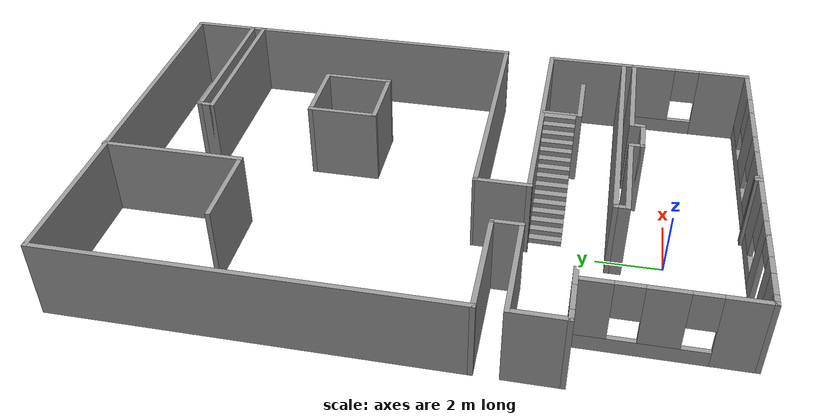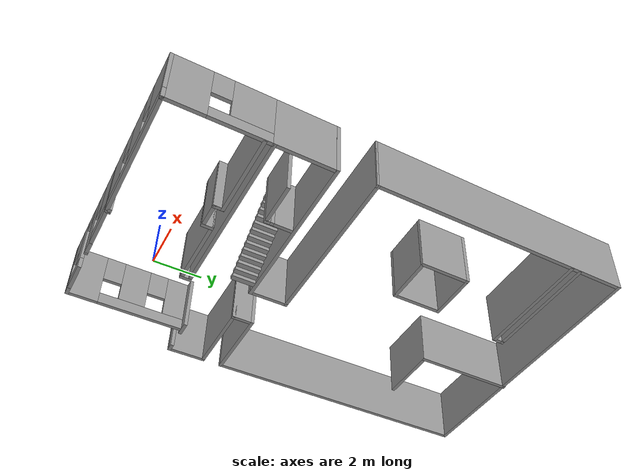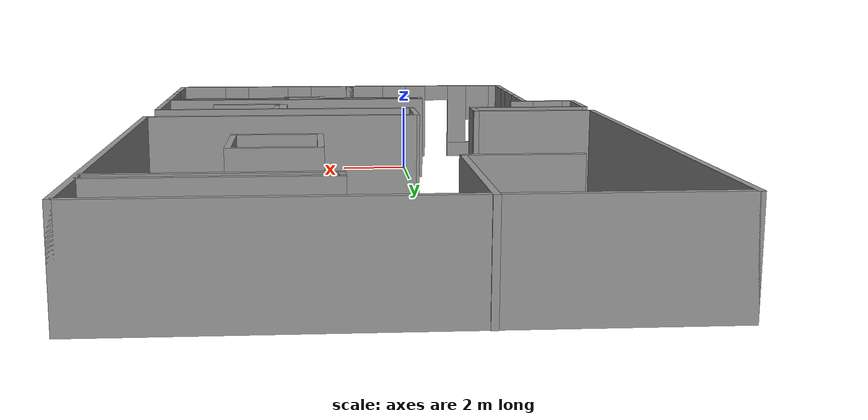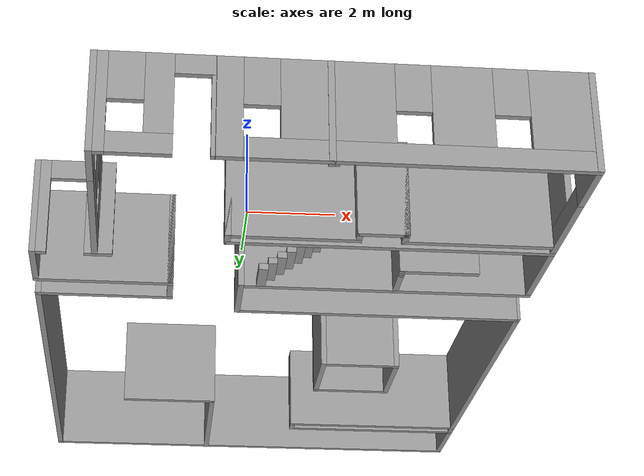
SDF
<?xml version='1.0'?>
<sdf version='1.7'>
  <model name='maze'>
    <pose>1.29327 7.35167 0 0 -0 0</pose>
    <link name='Stairs_0'>
      <visual name='Stairs_0_Visual_0'>
        <pose>-0.673494 -3.77939 0.083333 0 -0 1.5708</pose>
        <geometry>
          <box>
            <size>1 0.233333 0.166667</size>
          </box>
        </geometry>
        <material>
          <script>
            <uri>file://media/materials/scripts/gazebo.material</uri>
            <name>Gazebo/Grey</name>
          </script>
          <ambient>1 1 1 1</ambient>
        </material>
        <meta>
          <layer>0</layer>
        </meta>
      </visual>
      <collision name='Stairs_0_Collision_0'>
        <geometry>
          <box>
            <size>1 0.233333 0.166667</size>
          </box>
        </geometry>
        <pose>-0.673494 -3.77939 0.083333 0 -0 1.5708</pose>
      </collision>
      <visual name='Stairs_0_Visual_1'>
        <pose>-0.44016 -3.77939 0.25 0 -0 1.5708</pose>
        <geometry>
          <box>
            <size>1 0.233333 0.166667</size>
          </box>
        </geometry>
        <material>
          <script>
            <uri>file://media/materials/scripts/gazebo.material</uri>
            <name>Gazebo/Grey</name>
          </script>
          <ambient>1 1 1 1</ambient>
        </material>
        <meta>
          <layer>0</layer>
        </meta>
      </visual>
      <collision name='Stairs_0_Collision_1'>
        <geometry>
          <box>
            <size>1 0.233333 0.166667</size>
          </box>
        </geometry>
        <pose>-0.44016 -3.77939 0.25 0 -0 1.5708</pose>
      </collision>
      <visual name='Stairs_0_Visual_2'>
        <pose>-0.206827 -3.77939 0.416667 0 -0 1.5708</pose>
        <geometry>
          <box>
            <size>1 0.233333 0.166667</size>
          </box>
        </geometry>
        <material>
          <script>
            <uri>file://media/materials/scripts/gazebo.material</uri>
            <name>Gazebo/Grey</name>
          </script>
          <ambient>1 1 1 1</ambient>
        </material>
        <meta>
          <layer>0</layer>
        </meta>
      </visual>
      <collision name='Stairs_0_Collision_2'>
        <geometry>
          <box>
            <size>1 0.233333 0.166667</size>
          </box>
        </geometry>
        <pose>-0.206827 -3.77939 0.416667 0 -0 1.5708</pose>
      </collision>
      <visual name='Stairs_0_Visual_3'>
        <pose>0.026506 -3.77939 0.583333 0 -0 1.5708</pose>
        <geometry>
          <box>
            <size>1 0.233333 0.166667</size>
          </box>
        </geometry>
        <material>
          <script>
            <uri>file://media/materials/scripts/gazebo.material</uri>
            <name>Gazebo/Grey</name>
          </script>
          <ambient>1 1 1 1</ambient>
        </material>
        <meta>
          <layer>0</layer>
        </meta>
      </visual>
      <collision name='Stairs_0_Collision_3'>
        <geometry>
          <box>
            <size>1 0.233333 0.166667</size>
          </box>
        </geometry>
        <pose>0.026506 -3.77939 0.583333 0 -0 1.5708</pose>
      </collision>
      <visual name='Stairs_0_Visual_4'>
        <pose>0.25984 -3.77939 0.75 0 -0 1.5708</pose>
        <geometry>
          <box>
            <size>1 0.233333 0.166667</size>
          </box>
        </geometry>
        <material>
          <script>
            <uri>file://media/materials/scripts/gazebo.material</uri>
            <name>Gazebo/Grey</name>
          </script>
          <ambient>1 1 1 1</ambient>
        </material>
        <meta>
          <layer>0</layer>
        </meta>
      </visual>
      <collision name='Stairs_0_Collision_4'>
        <geometry>
          <box>
            <size>1 0.233333 0.166667</size>
          </box>
        </geometry>
        <pose>0.25984 -3.77939 0.75 0 -0 1.5708</pose>
      </collision>
      <visual name='Stairs_0_Visual_5'>
        <pose>0.493173 -3.77939 0.916667 0 -0 1.5708</pose>
        <geometry>
          <box>
            <size>1 0.233333 0.166667</size>
          </box>
        </geometry>
        <material>
          <script>
            <uri>file://media/materials/scripts/gazebo.material</uri>
            <name>Gazebo/Grey</name>
          </script>
          <ambient>1 1 1 1</ambient>
        </material>
        <meta>
          <layer>0</layer>
        </meta>
      </visual>
      <collision name='Stairs_0_Collision_5'>
        <geometry>
          <box>
            <size>1 0.233333 0.166667</size>
          </box>
        </geometry>
        <pose>0.493173 -3.77939 0.916667 0 -0 1.5708</pose>
      </collision>
      <visual name='Stairs_0_Visual_6'>
        <pose>0.726506 -3.77939 1.08333 0 -0 1.5708</pose>
        <geometry>
          <box>
            <size>1 0.233333 0.166667</size>
          </box>
        </geometry>
        <material>
          <script>
            <uri>file://media/materials/scripts/gazebo.material</uri>
            <name>Gazebo/Grey</name>
          </script>
          <ambient>1 1 1 1</ambient>
        </material>
        <meta>
          <layer>0</layer>
        </meta>
      </visual>
      <collision name='Stairs_0_Collision_6'>
        <geometry>
          <box>
            <size>1 0.233333 0.166667</size>
          </box>
        </geometry>
        <pose>0.726506 -3.77939 1.08333 0 -0 1.5708</pose>
      </collision>
      <visual name='Stairs_0_Visual_7'>
        <pose>0.95984 -3.77939 1.25 0 -0 1.5708</pose>
        <geometry>
          <box>
            <size>1 0.233333 0.166667</size>
          </box>
        </geometry>
        <material>
          <script>
            <uri>file://media/materials/scripts/gazebo.material</uri>
            <name>Gazebo/Grey</name>
          </script>
          <ambient>1 1 1 1</ambient>
        </material>
        <meta>
          <layer>0</layer>
        </meta>
      </visual>
      <collision name='Stairs_0_Collision_7'>
        <geometry>
          <box>
            <size>1 0.233333 0.166667</size>
          </box>
        </geometry>
        <pose>0.95984 -3.77939 1.25 0 -0 1.5708</pose>
      </collision>
      <visual name='Stairs_0_Visual_8'>
        <pose>1.19317 -3.77939 1.41667 0 -0 1.5708</pose>
        <geometry>
          <box>
            <size>1 0.233333 0.166667</size>
          </box>
        </geometry>
        <material>
          <script>
            <uri>file://media/materials/scripts/gazebo.material</uri>
            <name>Gazebo/Grey</name>
          </script>
          <ambient>1 1 1 1</ambient>
        </material>
        <meta>
          <layer>0</layer>
        </meta>
      </visual>
      <collision name='Stairs_0_Collision_8'>
        <geometry>
          <box>
            <size>1 0.233333 0.166667</size>
          </box>
        </geometry>
        <pose>1.19317 -3.77939 1.41667 0 -0 1.5708</pose>
      </collision>
      <visual name='Stairs_0_Visual_9'>
        <pose>1.42651 -3.77939 1.58333 0 -0 1.5708</pose>
        <geometry>
          <box>
            <size>1 0.233333 0.166667</size>
          </box>
        </geometry>
        <material>
          <script>
            <uri>file://media/materials/scripts/gazebo.material</uri>
            <name>Gazebo/Grey</name>
          </script>
          <ambient>1 1 1 1</ambient>
        </material>
        <meta>
          <layer>0</layer>
        </meta>
      </visual>
      <collision name='Stairs_0_Collision_9'>
        <geometry>
          <box>
            <size>1 0.233333 0.166667</size>
          </box>
        </geometry>
        <pose>1.42651 -3.77939 1.58333 0 -0 1.5708</pose>
      </collision>
      <visual name='Stairs_0_Visual_10'>
        <pose>1.65984 -3.77939 1.75 0 -0 1.5708</pose>
        <geometry>
          <box>
            <size>1 0.233333 0.166667</size>
          </box>
        </geometry>
        <material>
          <script>
            <uri>file://media/materials/scripts/gazebo.material</uri>
            <name>Gazebo/Grey</name>
          </script>
          <ambient>1 1 1 1</ambient>
        </material>
        <meta>
          <layer>0</layer>
        </meta>
      </visual>
      <collision name='Stairs_0_Collision_10'>
        <geometry>
          <box>
            <size>1 0.233333 0.166667</size>
          </box>
        </geometry>
        <pose>1.65984 -3.77939 1.75 0 -0 1.5708</pose>
      </collision>
      <visual name='Stairs_0_Visual_11'>
        <pose>1.89317 -3.77939 1.91667 0 -0 1.5708</pose>
        <geometry>
          <box>
            <size>1 0.233333 0.166667</size>
          </box>
        </geometry>
        <material>
          <script>
            <uri>file://media/materials/scripts/gazebo.material</uri>
            <name>Gazebo/Grey</name>
          </script>
          <ambient>1 1 1 1</ambient>
        </material>
        <meta>
          <layer>0</layer>
        </meta>
      </visual>
      <collision name='Stairs_0_Collision_11'>
        <geometry>
          <box>
            <size>1 0.233333 0.166667</size>
          </box>
        </geometry>
        <pose>1.89317 -3.77939 1.91667 0 -0 1.5708</pose>
      </collision>
      <visual name='Stairs_0_Visual_12'>
        <pose>2.12651 -3.77939 2.08333 0 -0 1.5708</pose>
        <geometry>
          <box>
            <size>1 0.233333 0.166667</size>
          </box>
        </geometry>
        <material>
          <script>
            <uri>file://media/materials/scripts/gazebo.material</uri>
            <name>Gazebo/Grey</name>
          </script>
          <ambient>1 1 1 1</ambient>
        </material>
        <meta>
          <layer>0</layer>
        </meta>
      </visual>
      <collision name='Stairs_0_Collision_12'>
        <geometry>
          <box>
            <size>1 0.233333 0.166667</size>
          </box>
        </geometry>
        <pose>2.12651 -3.77939 2.08333 0 -0 1.5708</pose>
      </collision>
      <visual name='Stairs_0_Visual_13'>
        <pose>2.35984 -3.77939 2.25 0 -0 1.5708</pose>
        <geometry>
          <box>
            <size>1 0.233333 0.166667</size>
          </box>
        </geometry>
        <material>
          <script>
            <uri>file://media/materials/scripts/gazebo.material</uri>
            <name>Gazebo/Grey</name>
          </script>
          <ambient>1 1 1 1</ambient>
        </material>
        <meta>
          <layer>0</layer>
        </meta>
      </visual>
      <collision name='Stairs_0_Collision_13'>
        <geometry>
          <box>
            <size>1 0.233333 0.166667</size>
          </box>
        </geometry>
        <pose>2.35984 -3.77939 2.25 0 -0 1.5708</pose>
      </collision>
      <visual name='Stairs_0_Visual_14'>
        <pose>2.59317 -3.77939 2.41667 0 -0 1.5708</pose>
        <geometry>
          <box>
            <size>1 0.233333 0.166667</size>
          </box>
        </geometry>
        <material>
          <script>
            <uri>file://media/materials/scripts/gazebo.material</uri>
            <name>Gazebo/Grey</name>
          </script>
          <ambient>1 1 1 1</ambient>
        </material>
        <meta>
          <layer>0</layer>
        </meta>
      </visual>
      <collision name='Stairs_0_Collision_14'>
        <geometry>
          <box>
            <size>1 0.233333 0.166667</size>
          </box>
        </geometry>
        <pose>2.59317 -3.77939 2.41667 0 -0 1.5708</pose>
      </collision>
    </link>
    <link name='Wall_16'>
      <pose>-4.8001 -7.34451 0 0 -0 1.5708</pose>
      <visual name='Wall_16_Visual_0'>
        <pose>-1.84788 0 1.25 0 -0 0</pose>
        <geometry>
          <box>
            <size>1.33923 0.15 2.5</size>
          </box>
        </geometry>
        <material>
          <script>
            <uri>file://media/materials/scripts/gazebo.material</uri>
            <name>Gazebo/Grey</name>
          </script>
          <ambient>1 1 1 1</ambient>
        </material>
        <meta>
          <layer>0</layer>
        </meta>
      </visual>
      <collision name='Wall_16_Collision_0'>
        <geometry>
          <box>
            <size>1.33923 0.15 2.5</size>
          </box>
        </geometry>
        <pose>-1.84788 0 1.25 0 -0 0</pose>
      </collision>
      <visual name='Wall_16_Visual_1'>
        <pose>0.669613 0 0.25 0 -0 0</pose>
        <geometry>
          <box>
            <size>3.69575 0.15 0.5</size>
          </box>
        </geometry>
        <material>
          <script>
            <uri>file://media/materials/scripts/gazebo.material</uri>
            <name>Gazebo/Grey</name>
          </script>
          <ambient>1 1 1 1</ambient>
        </material>
        <meta>
          <layer>0</layer>
        </meta>
      </visual>
      <collision name='Wall_16_Collision_1'>
        <geometry>
          <box>
            <size>3.69575 0.15 0.5</size>
          </box>
        </geometry>
        <pose>0.669613 0 0.25 0 -0 0</pose>
      </collision>
      <visual name='Wall_16_Visual_2'>
        <pose>0.19458 0 1.5 0 -0 0</pose>
        <geometry>
          <box>
            <size>1.14569 0.15 2</size>
          </box>
        </geometry>
        <material>
          <script>
            <uri>file://media/materials/scripts/gazebo.material</uri>
            <name>Gazebo/Grey</name>
          </script>
          <ambient>1 1 1 1</ambient>
        </material>
        <meta>
          <layer>0</layer>
        </meta>
      </visual>
      <collision name='Wall_16_Collision_2'>
        <geometry>
          <box>
            <size>1.14569 0.15 2</size>
          </box>
        </geometry>
        <pose>0.19458 0 1.5 0 -0 0</pose>
      </collision>
      <visual name='Wall_16_Visual_3'>
        <pose>2.04246 0 1.5 0 -0 0</pose>
        <geometry>
          <box>
            <size>0.950066 0.15 2</size>
          </box>
        </geometry>
        <material>
          <script>
            <uri>file://media/materials/scripts/gazebo.material</uri>
            <name>Gazebo/Grey</name>
          </script>
          <ambient>1 1 1 1</ambient>
        </material>
        <meta>
          <layer>0</layer>
        </meta>
      </visual>
      <collision name='Wall_16_Collision_3'>
        <geometry>
          <box>
            <size>0.950066 0.15 2</size>
          </box>
        </geometry>
        <pose>2.04246 0 1.5 0 -0 0</pose>
      </collision>
      <visual name='Wall_16_Visual_4'>
        <pose>-0.778264 0 1.9 0 -0 0</pose>
        <geometry>
          <box>
            <size>0.8 0.15 1.2</size>
          </box>
        </geometry>
        <material>
          <script>
            <uri>file://media/materials/scripts/gazebo.material</uri>
            <name>Gazebo/Grey</name>
          </script>
          <ambient>1 1 1 1</ambient>
        </material>
        <meta>
          <layer>0</layer>
        </meta>
      </visual>
      <collision name='Wall_16_Collision_4'>
        <geometry>
          <box>
            <size>0.8 0.15 1.2</size>
          </box>
        </geometry>
        <pose>-0.778264 0 1.9 0 -0 0</pose>
      </collision>
      <visual name='Wall_16_Visual_5'>
        <pose>1.16742 0 1.9 0 -0 0</pose>
        <geometry>
          <box>
            <size>0.8 0.15 1.2</size>
          </box>
        </geometry>
        <material>
          <script>
            <uri>file://media/materials/scripts/gazebo.material</uri>
            <name>Gazebo/Grey</name>
          </script>
          <ambient>1 1 1 1</ambient>
        </material>
        <meta>
          <layer>0</layer>
        </meta>
      </visual>
      <collision name='Wall_16_Collision_5'>
        <geometry>
          <box>
            <size>0.8 0.15 1.2</size>
          </box>
        </geometry>
        <pose>1.16742 0 1.9 0 -0 0</pose>
      </collision>
    </link>
    <link name='Wall_164'>
      <collision name='Wall_164_Collision'>
        <geometry>
          <box>
            <size>5.25 0.15 2.5</size>
          </box>
        </geometry>
        <pose>0 0 1.25 0 -0 0</pose>
      </collision>
      <visual name='Wall_164_Visual'>
        <pose>0 0 1.25 0 -0 0</pose>
        <geometry>
          <box>
            <size>5.25 0.15 2.5</size>
          </box>
        </geometry>
        <material>
          <script>
            <uri>file://media/materials/scripts/gazebo.material</uri>
            <name>Gazebo/Grey</name>
          </script>
          <ambient>1 1 1 1</ambient>
        </material>
        <meta>
          <layer>0</layer>
        </meta>
      </visual>
      <pose>3.70367 7.75025 0 0 -0 3.14159</pose>
    </link>
    <link name='Wall_165'>
      <collision name='Wall_165_Collision'>
        <geometry>
          <box>
            <size>0.554437 0.15 2.5</size>
          </box>
        </geometry>
        <pose>0 0 1.25 0 -0 0</pose>
      </collision>
      <visual name='Wall_165_Visual'>
        <pose>0 0 1.25 0 -0 0</pose>
        <geometry>
          <box>
            <size>0.554437 0.15 2.5</size>
          </box>
        </geometry>
        <material>
          <script>
            <uri>file://media/materials/scripts/gazebo.material</uri>
            <name>Gazebo/Grey</name>
          </script>
          <ambient>1 1 1 1</ambient>
        </material>
        <meta>
          <layer>0</layer>
        </meta>
      </visual>
      <pose>1.15367 7.54803 0 0 -0 -1.5708</pose>
    </link>
    <link name='Wall_166'>
      <collision name='Wall_166_Collision'>
        <geometry>
          <box>
            <size>5.25 0.15 2.5</size>
          </box>
        </geometry>
        <pose>0 0 1.25 0 -0 0</pose>
      </collision>
      <visual name='Wall_166_Visual'>
        <pose>0 0 1.25 0 -0 0</pose>
        <geometry>
          <box>
            <size>5.25 0.15 2.5</size>
          </box>
        </geometry>
        <material>
          <script>
            <uri>file://media/materials/scripts/gazebo.material</uri>
            <name>Gazebo/Grey</name>
          </script>
          <ambient>1 1 1 1</ambient>
        </material>
        <meta>
          <layer>0</layer>
        </meta>
      </visual>
      <pose>3.70367 7.34581 0 0 -0 0</pose>
    </link>
    <link name='Wall_168'>
      <collision name='Wall_168_Collision'>
        <geometry>
          <box>
            <size>4.5 0.15 2.5</size>
          </box>
        </geometry>
        <pose>0 0 1.25 0 -0 0</pose>
      </collision>
      <visual name='Wall_168_Visual'>
        <pose>0 0 1.25 0 -0 0</pose>
        <geometry>
          <box>
            <size>4.5 0.15 2.5</size>
          </box>
        </geometry>
        <material>
          <script>
            <uri>file://media/materials/scripts/gazebo.material</uri>
            <name>Gazebo/Grey</name>
          </script>
          <ambient>1 1 1 1</ambient>
        </material>
        <meta>
          <layer>0</layer>
        </meta>
      </visual>
      <pose>-1.5102 7.612 0 0 -0 1.5708</pose>
    </link>
    <link name='Wall_170'>
      <collision name='Wall_170_Collision'>
        <geometry>
          <box>
            <size>2.75 0.15 2.5</size>
          </box>
        </geometry>
        <pose>0 0 1.25 0 -0 0</pose>
      </collision>
      <visual name='Wall_170_Visual'>
        <pose>0 0 1.25 0 -0 0</pose>
        <geometry>
          <box>
            <size>2.75 0.15 2.5</size>
          </box>
        </geometry>
        <material>
          <script>
            <uri>file://media/materials/scripts/gazebo.material</uri>
            <name>Gazebo/Grey</name>
          </script>
          <ambient>1 1 1 1</ambient>
        </material>
        <meta>
          <layer>0</layer>
        </meta>
      </visual>
      <pose>-2.8102 5.437 0 0 -0 3.14159</pose>
    </link>
    <link name='Wall_172'>
      <collision name='Wall_172_Collision'>
        <geometry>
          <box>
            <size>2.25 0.15 2.5</size>
          </box>
        </geometry>
        <pose>0 0 1.25 0 -0 0</pose>
      </collision>
      <visual name='Wall_172_Visual'>
        <pose>0 0 1.25 0 -0 0</pose>
        <geometry>
          <box>
            <size>2.25 0.15 2.5</size>
          </box>
        </geometry>
        <material>
          <script>
            <uri>file://media/materials/scripts/gazebo.material</uri>
            <name>Gazebo/Grey</name>
          </script>
          <ambient>1 1 1 1</ambient>
        </material>
        <meta>
          <layer>0</layer>
        </meta>
      </visual>
      <pose>1.54077 3.09965 0 0 -0 -1.5708</pose>
    </link>
    <link name='Wall_173'>
      <collision name='Wall_173_Collision'>
        <geometry>
          <box>
            <size>2.25 0.15 2.5</size>
          </box>
        </geometry>
        <pose>0 0 1.25 0 -0 0</pose>
      </collision>
      <visual name='Wall_173_Visual'>
        <pose>0 0 1.25 0 -0 0</pose>
        <geometry>
          <box>
            <size>2.25 0.15 2.5</size>
          </box>
        </geometry>
        <material>
          <script>
            <uri>file://media/materials/scripts/gazebo.material</uri>
            <name>Gazebo/Grey</name>
          </script>
          <ambient>1 1 1 1</ambient>
        </material>
        <meta>
          <layer>0</layer>
        </meta>
      </visual>
      <pose>2.59077 2.04966 0 0 -0 0</pose>
    </link>
    <link name='Wall_174'>
      <collision name='Wall_174_Collision'>
        <geometry>
          <box>
            <size>2.25 0.15 2.5</size>
          </box>
        </geometry>
        <pose>0 0 1.25 0 -0 0</pose>
      </collision>
      <visual name='Wall_174_Visual'>
        <pose>0 0 1.25 0 -0 0</pose>
        <geometry>
          <box>
            <size>2.25 0.15 2.5</size>
          </box>
        </geometry>
        <material>
          <script>
            <uri>file://media/materials/scripts/gazebo.material</uri>
            <name>Gazebo/Grey</name>
          </script>
          <ambient>1 1 1 1</ambient>
        </material>
        <meta>
          <layer>0</layer>
        </meta>
      </visual>
      <pose>3.64077 3.09965 0 0 -0 1.5708</pose>
    </link>
    <link name='Wall_176'>
      <collision name='Wall_176_Collision'>
        <geometry>
          <box>
            <size>2.25 0.15 2.5</size>
          </box>
        </geometry>
        <pose>0 0 1.25 0 -0 0</pose>
      </collision>
      <visual name='Wall_176_Visual'>
        <pose>0 0 1.25 0 -0 0</pose>
        <geometry>
          <box>
            <size>2.25 0.15 2.5</size>
          </box>
        </geometry>
        <material>
          <script>
            <uri>file://media/materials/scripts/gazebo.material</uri>
            <name>Gazebo/Grey</name>
          </script>
          <ambient>1 1 1 1</ambient>
        </material>
        <meta>
          <layer>0</layer>
        </meta>
      </visual>
      <pose>2.59077 4.14966 0 0 -0 0</pose>
    </link>
    <link name='Wall_31'>
      <collision name='Wall_31_Collision'>
        <geometry>
          <box>
            <size>1.7316 0.15 2.5</size>
          </box>
        </geometry>
        <pose>0 0 1.25 0 -0 0</pose>
      </collision>
      <visual name='Wall_31_Visual'>
        <pose>0 0 1.25 0 -0 0</pose>
        <geometry>
          <box>
            <size>1.7316 0.15 2.5</size>
          </box>
        </geometry>
        <material>
          <script>
            <uri>file://media/materials/scripts/gazebo.material</uri>
            <name>Gazebo/Grey</name>
          </script>
          <ambient>1 1 1 1</ambient>
        </material>
        <meta>
          <layer>0</layer>
        </meta>
      </visual>
      <pose>-6.3001 -3.9928 0 0 -0 1.5708</pose>
    </link>
    <link name='Wall_32'>
      <collision name='Wall_32_Collision'>
        <geometry>
          <box>
            <size>3.5 0.15 2.5</size>
          </box>
        </geometry>
        <pose>0 0 1.25 0 -0 0</pose>
      </collision>
      <visual name='Wall_32_Visual'>
        <pose>0 0 1.25 0 -0 0</pose>
        <geometry>
          <box>
            <size>3.5 0.15 2.5</size>
          </box>
        </geometry>
        <material>
          <script>
            <uri>file://media/materials/scripts/gazebo.material</uri>
            <name>Gazebo/Grey</name>
          </script>
          <ambient>1 1 1 1</ambient>
        </material>
        <meta>
          <layer>0</layer>
        </meta>
      </visual>
      <pose>-4.6251 -3.20202 0 0 -0 0</pose>
    </link>
    <link name='Wall_34'>
      <pose>-3.5001 -9.787 0 0 -0 0</pose>
      <visual name='Wall_34_Visual_0'>
        <pose>-1.17501 0 1.25 0 -0 0</pose>
        <geometry>
          <box>
            <size>0.399976 0.15 2.5</size>
          </box>
        </geometry>
        <material>
          <script>
            <uri>file://media/materials/scripts/gazebo.material</uri>
            <name>Gazebo/Grey</name>
          </script>
          <ambient>1 1 1 1</ambient>
        </material>
        <meta>
          <layer>0</layer>
        </meta>
      </visual>
      <collision name='Wall_34_Collision_0'>
        <geometry>
          <box>
            <size>0.399976 0.15 2.5</size>
          </box>
        </geometry>
        <pose>-1.17501 0 1.25 0 -0 0</pose>
      </collision>
      <visual name='Wall_34_Visual_1'>
        <pose>1.37003 0 1.25 0 -0 0</pose>
        <geometry>
          <box>
            <size>0.009944 0.15 2.5</size>
          </box>
        </geometry>
        <material>
          <script>
            <uri>file://media/materials/scripts/gazebo.material</uri>
            <name>Gazebo/Grey</name>
          </script>
          <ambient>1 1 1 1</ambient>
        </material>
        <meta>
          <layer>0</layer>
        </meta>
      </visual>
      <collision name='Wall_34_Collision_1'>
        <geometry>
          <box>
            <size>0.009944 0.15 2.5</size>
          </box>
        </geometry>
        <pose>1.37003 0 1.25 0 -0 0</pose>
      </collision>
      <visual name='Wall_34_Visual_2'>
        <pose>-0.254984 0 0.25 0 -0 0</pose>
        <geometry>
          <box>
            <size>1.44008 0.15 0.5</size>
          </box>
        </geometry>
        <material>
          <script>
            <uri>file://media/materials/scripts/gazebo.material</uri>
            <name>Gazebo/Grey</name>
          </script>
          <ambient>1 1 1 1</ambient>
        </material>
        <meta>
          <layer>0</layer>
        </meta>
      </visual>
      <collision name='Wall_34_Collision_2'>
        <geometry>
          <box>
            <size>1.44008 0.15 0.5</size>
          </box>
        </geometry>
        <pose>-0.254984 0 0.25 0 -0 0</pose>
      </collision>
      <visual name='Wall_34_Visual_3'>
        <pose>0.145016 0 1.5 0 -0 0</pose>
        <geometry>
          <box>
            <size>0.64008 0.15 2</size>
          </box>
        </geometry>
        <material>
          <script>
            <uri>file://media/materials/scripts/gazebo.material</uri>
            <name>Gazebo/Grey</name>
          </script>
          <ambient>1 1 1 1</ambient>
        </material>
        <meta>
          <layer>0</layer>
        </meta>
      </visual>
      <collision name='Wall_34_Collision_3'>
        <geometry>
          <box>
            <size>0.64008 0.15 2</size>
          </box>
        </geometry>
        <pose>0.145016 0 1.5 0 -0 0</pose>
      </collision>
      <visual name='Wall_34_Visual_4'>
        <pose>-0.575024 0 1.9 0 -0 0</pose>
        <geometry>
          <box>
            <size>0.8 0.15 1.2</size>
          </box>
        </geometry>
        <material>
          <script>
            <uri>file://media/materials/scripts/gazebo.material</uri>
            <name>Gazebo/Grey</name>
          </script>
          <ambient>1 1 1 1</ambient>
        </material>
        <meta>
          <layer>0</layer>
        </meta>
      </visual>
      <collision name='Wall_34_Collision_4'>
        <geometry>
          <box>
            <size>0.8 0.15 1.2</size>
          </box>
        </geometry>
        <pose>-0.575024 0 1.9 0 -0 0</pose>
      </collision>
      <visual name='Wall_34_Visual_5'>
        <pose>0.915056 0 2.25 0 -0 0</pose>
        <geometry>
          <box>
            <size>0.9 0.15 0.5</size>
          </box>
        </geometry>
        <material>
          <script>
            <uri>file://media/materials/scripts/gazebo.material</uri>
            <name>Gazebo/Grey</name>
          </script>
          <ambient>1 1 1 1</ambient>
        </material>
        <meta>
          <layer>0</layer>
        </meta>
      </visual>
      <collision name='Wall_34_Collision_5'>
        <geometry>
          <box>
            <size>0.9 0.15 0.5</size>
          </box>
        </geometry>
        <pose>0.915056 0 2.25 0 -0 0</pose>
      </collision>
    </link>
    <link name='Wall_51'>
      <collision name='Wall_51_Collision'>
        <geometry>
          <box>
            <size>0.25 0.15 2.5</size>
          </box>
        </geometry>
        <pose>0 0 1.25 0 -0 0</pose>
      </collision>
      <visual name='Wall_51_Visual'>
        <pose>0 0 1.25 0 -0 0</pose>
        <geometry>
          <box>
            <size>0.25 0.15 2.5</size>
          </box>
        </geometry>
        <material>
          <script>
            <uri>file://media/materials/scripts/gazebo.material</uri>
            <name>Gazebo/Grey</name>
          </script>
          <ambient>1 1 1 1</ambient>
        </material>
        <meta>
          <layer>0</layer>
        </meta>
      </visual>
      <pose>0.370546 -9.73691 0 0 -0 1.5708</pose>
    </link>
    <link name='Wall_52'>
      <collision name='Wall_52_Collision'>
        <geometry>
          <box>
            <size>0.25 0.15 2.5</size>
          </box>
        </geometry>
        <pose>0 0 1.25 0 -0 0</pose>
      </collision>
      <visual name='Wall_52_Visual'>
        <pose>0 0 1.25 0 -0 0</pose>
        <geometry>
          <box>
            <size>0.25 0.15 2.5</size>
          </box>
        </geometry>
        <material>
          <script>
            <uri>file://media/materials/scripts/gazebo.material</uri>
            <name>Gazebo/Grey</name>
          </script>
          <ambient>1 1 1 1</ambient>
        </material>
        <meta>
          <layer>0</layer>
        </meta>
      </visual>
      <pose>0.420546 -9.68691 0 0 -0 0</pose>
    </link>
    <link name='Wall_54'>
      <pose>6.19248 -7.73607 0 0 -0 1.5708</pose>
      <visual name='Wall_54_Visual_0'>
        <pose>-1.29834 0 1.25 0 -0 0</pose>
        <geometry>
          <box>
            <size>1.65332 0.15 2.5</size>
          </box>
        </geometry>
        <material>
          <script>
            <uri>file://media/materials/scripts/gazebo.material</uri>
            <name>Gazebo/Grey</name>
          </script>
          <ambient>1 1 1 1</ambient>
        </material>
        <meta>
          <layer>0</layer>
        </meta>
      </visual>
      <collision name='Wall_54_Collision_0'>
        <geometry>
          <box>
            <size>1.65332 0.15 2.5</size>
          </box>
        </geometry>
        <pose>-1.29834 0 1.25 0 -0 0</pose>
      </collision>
      <visual name='Wall_54_Visual_1'>
        <pose>0.82666 0 0.25 0 -0 0</pose>
        <geometry>
          <box>
            <size>2.59668 0.15 0.5</size>
          </box>
        </geometry>
        <material>
          <script>
            <uri>file://media/materials/scripts/gazebo.material</uri>
            <name>Gazebo/Grey</name>
          </script>
          <ambient>1 1 1 1</ambient>
        </material>
        <meta>
          <layer>0</layer>
        </meta>
      </visual>
      <collision name='Wall_54_Collision_1'>
        <geometry>
          <box>
            <size>2.59668 0.15 0.5</size>
          </box>
        </geometry>
        <pose>0.82666 0 0.25 0 -0 0</pose>
      </collision>
      <visual name='Wall_54_Visual_2'>
        <pose>1.22666 0 1.5 0 -0 0</pose>
        <geometry>
          <box>
            <size>1.79668 0.15 2</size>
          </box>
        </geometry>
        <material>
          <script>
            <uri>file://media/materials/scripts/gazebo.material</uri>
            <name>Gazebo/Grey</name>
          </script>
          <ambient>1 1 1 1</ambient>
        </material>
        <meta>
          <layer>0</layer>
        </meta>
      </visual>
      <collision name='Wall_54_Collision_2'>
        <geometry>
          <box>
            <size>1.79668 0.15 2</size>
          </box>
        </geometry>
        <pose>1.22666 0 1.5 0 -0 0</pose>
      </collision>
      <visual name='Wall_54_Visual_3'>
        <pose>-0.07168 0 1.9 0 -0 0</pose>
        <geometry>
          <box>
            <size>0.8 0.15 1.2</size>
          </box>
        </geometry>
        <material>
          <script>
            <uri>file://media/materials/scripts/gazebo.material</uri>
            <name>Gazebo/Grey</name>
          </script>
          <ambient>1 1 1 1</ambient>
        </material>
        <meta>
          <layer>0</layer>
        </meta>
      </visual>
      <collision name='Wall_54_Collision_3'>
        <geometry>
          <box>
            <size>0.8 0.15 1.2</size>
          </box>
        </geometry>
        <pose>-0.07168 0 1.9 0 -0 0</pose>
      </collision>
    </link>
    <link name='Wall_55'>
      <collision name='Wall_55_Collision'>
        <geometry>
          <box>
            <size>8 0.15 2.5</size>
          </box>
        </geometry>
        <pose>0 0 1.25 0 -0 0</pose>
      </collision>
      <visual name='Wall_55_Visual'>
        <pose>0 0 1.25 0 -0 0</pose>
        <geometry>
          <box>
            <size>8 0.15 2.5</size>
          </box>
        </geometry>
        <material>
          <script>
            <uri>file://media/materials/scripts/gazebo.material</uri>
            <name>Gazebo/Grey</name>
          </script>
          <ambient>1 1 1 1</ambient>
        </material>
        <meta>
          <layer>0</layer>
        </meta>
      </visual>
      <pose>2.26748 -5.68607 0 0 -0 3.14159</pose>
    </link>
    <link name='Wall_56'>
      <collision name='Wall_56_Collision'>
        <geometry>
          <box>
            <size>0.5 0.15 2.5</size>
          </box>
        </geometry>
        <pose>0 0 1.25 0 -0 0</pose>
      </collision>
      <visual name='Wall_56_Visual'>
        <pose>0 0 1.25 0 -0 0</pose>
        <geometry>
          <box>
            <size>0.5 0.15 2.5</size>
          </box>
        </geometry>
        <material>
          <script>
            <uri>file://media/materials/scripts/gazebo.material</uri>
            <name>Gazebo/Grey</name>
          </script>
          <ambient>1 1 1 1</ambient>
        </material>
        <meta>
          <layer>0</layer>
        </meta>
      </visual>
      <pose>-1.65752 -5.86107 0 0 -0 -1.5708</pose>
    </link>
    <link name='Wall_57'>
      <collision name='Wall_57_Collision'>
        <geometry>
          <box>
            <size>3.25 0.15 2.5</size>
          </box>
        </geometry>
        <pose>0 0 1.25 0 -0 0</pose>
      </collision>
      <visual name='Wall_57_Visual'>
        <pose>0 0 1.25 0 -0 0</pose>
        <geometry>
          <box>
            <size>3.25 0.15 2.5</size>
          </box>
        </geometry>
        <material>
          <script>
            <uri>file://media/materials/scripts/gazebo.material</uri>
            <name>Gazebo/Grey</name>
          </script>
          <ambient>1 1 1 1</ambient>
        </material>
        <meta>
          <layer>0</layer>
        </meta>
      </visual>
      <pose>-0.107519 -6.03607 0 0 -0 0</pose>
    </link>
    <link name='Wall_58'>
      <collision name='Wall_58_Collision'>
        <geometry>
          <box>
            <size>0.5 0.15 2.5</size>
          </box>
        </geometry>
        <pose>0 0 1.25 0 -0 0</pose>
      </collision>
      <visual name='Wall_58_Visual'>
        <pose>0 0 1.25 0 -0 0</pose>
        <geometry>
          <box>
            <size>0.5 0.15 2.5</size>
          </box>
        </geometry>
        <material>
          <script>
            <uri>file://media/materials/scripts/gazebo.material</uri>
            <name>Gazebo/Grey</name>
          </script>
          <ambient>1 1 1 1</ambient>
        </material>
        <meta>
          <layer>0</layer>
        </meta>
      </visual>
      <pose>1.44248 -6.21107 0 0 -0 -1.5708</pose>
    </link>
    <link name='Wall_59'>
      <collision name='Wall_59_Collision'>
        <geometry>
          <box>
            <size>1.25 0.15 2.5</size>
          </box>
        </geometry>
        <pose>0 0 1.25 0 -0 0</pose>
      </collision>
      <visual name='Wall_59_Visual'>
        <pose>0 0 1.25 0 -0 0</pose>
        <geometry>
          <box>
            <size>1.25 0.15 2.5</size>
          </box>
        </geometry>
        <material>
          <script>
            <uri>file://media/materials/scripts/gazebo.material</uri>
            <name>Gazebo/Grey</name>
          </script>
          <ambient>1 1 1 1</ambient>
        </material>
        <meta>
          <layer>0</layer>
        </meta>
      </visual>
      <pose>1.99248 -6.38607 0 0 -0 0</pose>
    </link>
    <link name='Wall_60'>
      <collision name='Wall_60_Collision'>
        <geometry>
          <box>
            <size>0.5 0.15 2.5</size>
          </box>
        </geometry>
        <pose>0 0 1.25 0 -0 0</pose>
      </collision>
      <visual name='Wall_60_Visual'>
        <pose>0 0 1.25 0 -0 0</pose>
        <geometry>
          <box>
            <size>0.5 0.15 2.5</size>
          </box>
        </geometry>
        <material>
          <script>
            <uri>file://media/materials/scripts/gazebo.material</uri>
            <name>Gazebo/Grey</name>
          </script>
          <ambient>1 1 1 1</ambient>
        </material>
        <meta>
          <layer>0</layer>
        </meta>
      </visual>
      <pose>2.54248 -6.21107 0 0 -0 1.5708</pose>
    </link>
    <link name='Wall_61'>
      <collision name='Wall_61_Collision'>
        <geometry>
          <box>
            <size>3.75 0.15 2.5</size>
          </box>
        </geometry>
        <pose>0 0 1.25 0 -0 0</pose>
      </collision>
      <visual name='Wall_61_Visual'>
        <pose>0 0 1.25 0 -0 0</pose>
        <geometry>
          <box>
            <size>3.75 0.15 2.5</size>
          </box>
        </geometry>
        <material>
          <script>
            <uri>file://media/materials/scripts/gazebo.material</uri>
            <name>Gazebo/Grey</name>
          </script>
          <ambient>1 1 1 1</ambient>
        </material>
        <meta>
          <layer>0</layer>
        </meta>
      </visual>
      <pose>4.34248 -6.03607 0 0 -0 0</pose>
    </link>
    <link name='Wall_65'>
      <collision name='Wall_65_Collision'>
        <geometry>
          <box>
            <size>7.51403 0.15 2.5</size>
          </box>
        </geometry>
        <pose>0 0 1.25 0 -0 0</pose>
      </collision>
      <visual name='Wall_65_Visual'>
        <pose>0 0 1.25 0 -0 0</pose>
        <geometry>
          <box>
            <size>7.51403 0.15 2.5</size>
          </box>
        </geometry>
        <material>
          <script>
            <uri>file://media/materials/scripts/gazebo.material</uri>
            <name>Gazebo/Grey</name>
          </script>
          <ambient>1 1 1 1</ambient>
        </material>
        <meta>
          <layer>0</layer>
        </meta>
      </visual>
      <pose>2.51156 -3.20854 0 0 -0 0</pose>
    </link>
    <link name='Wall_67'>
      <collision name='Wall_67_Collision'>
        <geometry>
          <box>
            <size>2.5 0.15 2.5</size>
          </box>
        </geometry>
        <pose>0 0 1.25 0 -0 0</pose>
      </collision>
      <visual name='Wall_67_Visual'>
        <pose>0 0 1.25 0 -0 0</pose>
        <geometry>
          <box>
            <size>2.5 0.15 2.5</size>
          </box>
        </geometry>
        <material>
          <script>
            <uri>file://media/materials/scripts/gazebo.material</uri>
            <name>Gazebo/Grey</name>
          </script>
          <ambient>1 1 1 1</ambient>
        </material>
        <meta>
          <layer>0</layer>
        </meta>
      </visual>
      <pose>6.19248 -4.51107 0 0 -0 1.5708</pose>
    </link>
    <link name='Wall_70'>
      <collision name='Wall_70_Collision'>
        <geometry>
          <box>
            <size>0.15 0.15 2.5</size>
          </box>
        </geometry>
        <pose>0 0 1.25 0 -0 0</pose>
      </collision>
      <visual name='Wall_70_Visual'>
        <pose>0 0 1.25 0 -0 0</pose>
        <geometry>
          <box>
            <size>0.15 0.15 2.5</size>
          </box>
        </geometry>
        <material>
          <script>
            <uri>file://media/materials/scripts/gazebo.material</uri>
            <name>Gazebo/Grey</name>
          </script>
          <ambient>1 1 1 1</ambient>
        </material>
        <meta>
          <layer>0</layer>
        </meta>
      </visual>
      <pose>2.76415 -4.14752 0 0 -0 0</pose>
    </link>
    <link name='Wall_72'>
      <collision name='Wall_72_Collision'>
        <geometry>
          <box>
            <size>1.25 0.15 2.5</size>
          </box>
        </geometry>
        <pose>0 0 1.25 0 -0 0</pose>
      </collision>
      <visual name='Wall_72_Visual'>
        <pose>0 0 1.25 0 -0 0</pose>
        <geometry>
          <box>
            <size>1.25 0.15 2.5</size>
          </box>
        </geometry>
        <material>
          <script>
            <uri>file://media/materials/scripts/gazebo.material</uri>
            <name>Gazebo/Grey</name>
          </script>
          <ambient>1 1 1 1</ambient>
        </material>
        <meta>
          <layer>0</layer>
        </meta>
      </visual>
      <pose>2.76094 -3.83753 0 0 -0 -1.5708</pose>
    </link>
    <link name='Wall_73'>
      <collision name='Wall_73_Collision'>
        <geometry>
          <box>
            <size>2 0.15 2.5</size>
          </box>
        </geometry>
        <pose>0 0 1.25 0 -0 0</pose>
      </collision>
      <visual name='Wall_73_Visual'>
        <pose>0 0 1.25 0 -0 0</pose>
        <geometry>
          <box>
            <size>2 0.15 2.5</size>
          </box>
        </geometry>
        <material>
          <script>
            <uri>file://media/materials/scripts/gazebo.material</uri>
            <name>Gazebo/Grey</name>
          </script>
          <ambient>1 1 1 1</ambient>
        </material>
        <meta>
          <layer>0</layer>
        </meta>
      </visual>
      <pose>3.68594 -4.38753 0 0 -0 0</pose>
    </link>
    <link name='Wall_80'>
      <pose>2.01905 -9.78288 0 0 -0 0</pose>
      <visual name='Wall_80_Visual_0'>
        <pose>-3.90296 0 1.25 0 -0 0</pose>
        <geometry>
          <box>
            <size>0.69408 0.15 2.5</size>
          </box>
        </geometry>
        <material>
          <script>
            <uri>file://media/materials/scripts/gazebo.material</uri>
            <name>Gazebo/Grey</name>
          </script>
          <ambient>1 1 1 1</ambient>
        </material>
        <meta>
          <layer>0</layer>
        </meta>
      </visual>
      <collision name='Wall_80_Collision_0'>
        <geometry>
          <box>
            <size>0.69408 0.15 2.5</size>
          </box>
        </geometry>
        <pose>-3.90296 0 1.25 0 -0 0</pose>
      </collision>
      <visual name='Wall_80_Visual_1'>
        <pose>0.34704 0 0.25 0 -0 0</pose>
        <geometry>
          <box>
            <size>7.80592 0.15 0.5</size>
          </box>
        </geometry>
        <material>
          <script>
            <uri>file://media/materials/scripts/gazebo.material</uri>
            <name>Gazebo/Grey</name>
          </script>
          <ambient>1 1 1 1</ambient>
        </material>
        <meta>
          <layer>0</layer>
        </meta>
      </visual>
      <collision name='Wall_80_Collision_1'>
        <geometry>
          <box>
            <size>7.80592 0.15 0.5</size>
          </box>
        </geometry>
        <pose>0.34704 0 0.25 0 -0 0</pose>
      </collision>
      <visual name='Wall_80_Visual_2'>
        <pose>-1.50138 0 1.5 0 -0 0</pose>
        <geometry>
          <box>
            <size>2.50909 0.15 2</size>
          </box>
        </geometry>
        <material>
          <script>
            <uri>file://media/materials/scripts/gazebo.material</uri>
            <name>Gazebo/Grey</name>
          </script>
          <ambient>1 1 1 1</ambient>
        </material>
        <meta>
          <layer>0</layer>
        </meta>
      </visual>
      <collision name='Wall_80_Collision_2'>
        <geometry>
          <box>
            <size>2.50909 0.15 2</size>
          </box>
        </geometry>
        <pose>-1.50138 0 1.5 0 -0 0</pose>
      </collision>
      <visual name='Wall_80_Visual_3'>
        <pose>1.23997 0 1.5 0 -0 0</pose>
        <geometry>
          <box>
            <size>1.37361 0.15 2</size>
          </box>
        </geometry>
        <material>
          <script>
            <uri>file://media/materials/scripts/gazebo.material</uri>
            <name>Gazebo/Grey</name>
          </script>
          <ambient>1 1 1 1</ambient>
        </material>
        <meta>
          <layer>0</layer>
        </meta>
      </visual>
      <collision name='Wall_80_Collision_3'>
        <geometry>
          <box>
            <size>1.37361 0.15 2</size>
          </box>
        </geometry>
        <pose>1.23997 0 1.5 0 -0 0</pose>
      </collision>
      <visual name='Wall_80_Visual_4'>
        <pose>3.48839 0 1.5 0 -0 0</pose>
        <geometry>
          <box>
            <size>1.52322 0.15 2</size>
          </box>
        </geometry>
        <material>
          <script>
            <uri>file://media/materials/scripts/gazebo.material</uri>
            <name>Gazebo/Grey</name>
          </script>
          <ambient>1 1 1 1</ambient>
        </material>
        <meta>
          <layer>0</layer>
        </meta>
      </visual>
      <collision name='Wall_80_Collision_4'>
        <geometry>
          <box>
            <size>1.52322 0.15 2</size>
          </box>
        </geometry>
        <pose>3.48839 0 1.5 0 -0 0</pose>
      </collision>
      <visual name='Wall_80_Visual_5'>
        <pose>-3.15592 0 1.9 0 -0 0</pose>
        <geometry>
          <box>
            <size>0.8 0.15 1.2</size>
          </box>
        </geometry>
        <material>
          <script>
            <uri>file://media/materials/scripts/gazebo.material</uri>
            <name>Gazebo/Grey</name>
          </script>
          <ambient>1 1 1 1</ambient>
        </material>
        <meta>
          <layer>0</layer>
        </meta>
      </visual>
      <collision name='Wall_80_Collision_5'>
        <geometry>
          <box>
            <size>0.8 0.15 1.2</size>
          </box>
        </geometry>
        <pose>-3.15592 0 1.9 0 -0 0</pose>
      </collision>
      <visual name='Wall_80_Visual_6'>
        <pose>0.153167 0 1.9 0 -0 0</pose>
        <geometry>
          <box>
            <size>0.8 0.15 1.2</size>
          </box>
        </geometry>
        <material>
          <script>
            <uri>file://media/materials/scripts/gazebo.material</uri>
            <name>Gazebo/Grey</name>
          </script>
          <ambient>1 1 1 1</ambient>
        </material>
        <meta>
          <layer>0</layer>
        </meta>
      </visual>
      <collision name='Wall_80_Collision_6'>
        <geometry>
          <box>
            <size>0.8 0.15 1.2</size>
          </box>
        </geometry>
        <pose>0.153167 0 1.9 0 -0 0</pose>
      </collision>
      <visual name='Wall_80_Visual_7'>
        <pose>2.32678 0 1.9 0 -0 0</pose>
        <geometry>
          <box>
            <size>0.8 0.15 1.2</size>
          </box>
        </geometry>
        <material>
          <script>
            <uri>file://media/materials/scripts/gazebo.material</uri>
            <name>Gazebo/Grey</name>
          </script>
          <ambient>1 1 1 1</ambient>
        </material>
        <meta>
          <layer>0</layer>
        </meta>
      </visual>
      <collision name='Wall_80_Collision_7'>
        <geometry>
          <box>
            <size>0.8 0.15 1.2</size>
          </box>
        </geometry>
        <pose>2.32678 0 1.9 0 -0 0</pose>
      </collision>
    </link>
    <link name='Wall_82'>
      <pose>-5.3751 -4.78359 0 0 -0 0</pose>
      <visual name='Wall_82_Visual_0'>
        <pose>-0.793676 0 1.25 0 -0 0</pose>
        <geometry>
          <box>
            <size>0.412647 0.15 2.5</size>
          </box>
        </geometry>
        <material>
          <script>
            <uri>file://media/materials/scripts/gazebo.material</uri>
            <name>Gazebo/Grey</name>
          </script>
          <ambient>1 1 1 1</ambient>
        </material>
        <meta>
          <layer>0</layer>
        </meta>
      </visual>
      <collision name='Wall_82_Collision_0'>
        <geometry>
          <box>
            <size>0.412647 0.15 2.5</size>
          </box>
        </geometry>
        <pose>-0.793676 0 1.25 0 -0 0</pose>
      </collision>
      <visual name='Wall_82_Visual_1'>
        <pose>0.656324 0 1.25 0 -0 0</pose>
        <geometry>
          <box>
            <size>0.687353 0.15 2.5</size>
          </box>
        </geometry>
        <material>
          <script>
            <uri>file://media/materials/scripts/gazebo.material</uri>
            <name>Gazebo/Grey</name>
          </script>
          <ambient>1 1 1 1</ambient>
        </material>
        <meta>
          <layer>0</layer>
        </meta>
      </visual>
      <collision name='Wall_82_Collision_1'>
        <geometry>
          <box>
            <size>0.687353 0.15 2.5</size>
          </box>
        </geometry>
        <pose>0.656324 0 1.25 0 -0 0</pose>
      </collision>
      <visual name='Wall_82_Visual_2'>
        <pose>-0.137353 0 2.25 0 -0 0</pose>
        <geometry>
          <box>
            <size>0.9 0.15 0.5</size>
          </box>
        </geometry>
        <material>
          <script>
            <uri>file://media/materials/scripts/gazebo.material</uri>
            <name>Gazebo/Grey</name>
          </script>
          <ambient>1 1 1 1</ambient>
        </material>
        <meta>
          <layer>0</layer>
        </meta>
      </visual>
      <collision name='Wall_82_Collision_2'>
        <geometry>
          <box>
            <size>0.9 0.15 0.5</size>
          </box>
        </geometry>
        <pose>-0.137353 0 2.25 0 -0 0</pose>
      </collision>
    </link>
    <link name='Wall_84'>
      <collision name='Wall_84_Collision'>
        <geometry>
          <box>
            <size>1 0.15 2.5</size>
          </box>
        </geometry>
        <pose>0 0 1.25 0 -0 0</pose>
      </collision>
      <visual name='Wall_84_Visual'>
        <pose>0 0 1.25 0 -0 0</pose>
        <geometry>
          <box>
            <size>1 0.15 2.5</size>
          </box>
        </geometry>
        <material>
          <script>
            <uri>file://media/materials/scripts/gazebo.material</uri>
            <name>Gazebo/Grey</name>
          </script>
          <ambient>1 1 1 1</ambient>
        </material>
        <meta>
          <layer>0</layer>
        </meta>
      </visual>
      <pose>-2.9501 -2.77702 0 0 -0 1.5708</pose>
    </link>
    <link name='Wall_85'>
      <collision name='Wall_85_Collision'>
        <geometry>
          <box>
            <size>3.5 0.15 2.5</size>
          </box>
        </geometry>
        <pose>0 0 1.25 0 -0 0</pose>
      </collision>
      <visual name='Wall_85_Visual'>
        <pose>0 0 1.25 0 -0 0</pose>
        <geometry>
          <box>
            <size>3.5 0.15 2.5</size>
          </box>
        </geometry>
        <material>
          <script>
            <uri>file://media/materials/scripts/gazebo.material</uri>
            <name>Gazebo/Grey</name>
          </script>
          <ambient>1 1 1 1</ambient>
        </material>
        <meta>
          <layer>0</layer>
        </meta>
      </visual>
      <pose>-4.6251 -2.35202 0 0 -0 3.14159</pose>
    </link>
    <link name='Wall_86'>
      <collision name='Wall_86_Collision'>
        <geometry>
          <box>
            <size>12.25 0.15 2.5</size>
          </box>
        </geometry>
        <pose>0 0 1.25 0 -0 0</pose>
      </collision>
      <visual name='Wall_86_Visual'>
        <pose>0 0 1.25 0 -0 0</pose>
        <geometry>
          <box>
            <size>12.25 0.15 2.5</size>
          </box>
        </geometry>
        <material>
          <script>
            <uri>file://media/materials/scripts/gazebo.material</uri>
            <name>Gazebo/Grey</name>
          </script>
          <ambient>1 1 1 1</ambient>
        </material>
        <meta>
          <layer>0</layer>
        </meta>
      </visual>
      <pose>-6.3001 3.69798 0 0 -0 1.5708</pose>
    </link>
    <link name='Wall_90'>
      <collision name='Wall_90_Collision'>
        <geometry>
          <box>
            <size>12.75 0.15 2.5</size>
          </box>
        </geometry>
        <pose>0 0 1.25 0 -0 0</pose>
      </collision>
      <visual name='Wall_90_Visual'>
        <pose>0 0 1.25 0 -0 0</pose>
        <geometry>
          <box>
            <size>12.75 0.15 2.5</size>
          </box>
        </geometry>
        <material>
          <script>
            <uri>file://media/materials/scripts/gazebo.material</uri>
            <name>Gazebo/Grey</name>
          </script>
          <ambient>1 1 1 1</ambient>
        </material>
        <meta>
          <layer>0</layer>
        </meta>
      </visual>
      <pose>-0.000102 9.74798 0 0 -0 0</pose>
    </link>
    <link name='Wall_91'>
      <collision name='Wall_91_Collision'>
        <geometry>
          <box>
            <size>11.5 0.15 2.5</size>
          </box>
        </geometry>
        <pose>0 0 1.25 0 -0 0</pose>
      </collision>
      <visual name='Wall_91_Visual'>
        <pose>0 0 1.25 0 -0 0</pose>
        <geometry>
          <box>
            <size>11.5 0.15 2.5</size>
          </box>
        </geometry>
        <material>
          <script>
            <uri>file://media/materials/scripts/gazebo.material</uri>
            <name>Gazebo/Grey</name>
          </script>
          <ambient>1 1 1 1</ambient>
        </material>
        <meta>
          <layer>0</layer>
        </meta>
      </visual>
      <pose>6.2999 4.07298 0 0 -0 -1.5708</pose>
    </link>
    <link name='Wall_92'>
      <collision name='Wall_92_Collision'>
        <geometry>
          <box>
            <size>7.62037 0.15 2.5</size>
          </box>
        </geometry>
        <pose>0 0 1.25 0 -0 0</pose>
      </collision>
      <visual name='Wall_92_Visual'>
        <pose>0 0 1.25 0 -0 0</pose>
        <geometry>
          <box>
            <size>7.62037 0.15 2.5</size>
          </box>
        </geometry>
        <material>
          <script>
            <uri>file://media/materials/scripts/gazebo.material</uri>
            <name>Gazebo/Grey</name>
          </script>
          <ambient>1 1 1 1</ambient>
        </material>
        <meta>
          <layer>0</layer>
        </meta>
      </visual>
      <pose>2.56473 -1.61229 0 0 -0 -3.13884</pose>
    </link>
    <link name='Wall_93'>
      <collision name='Wall_93_Collision'>
        <geometry>
          <box>
            <size>1.75 0.15 2.5</size>
          </box>
        </geometry>
        <pose>0 0 1.25 0 -0 0</pose>
      </collision>
      <visual name='Wall_93_Visual'>
        <pose>0 0 1.25 0 -0 0</pose>
        <geometry>
          <box>
            <size>1.75 0.15 2.5</size>
          </box>
        </geometry>
        <material>
          <script>
            <uri>file://media/materials/scripts/gazebo.material</uri>
            <name>Gazebo/Grey</name>
          </script>
          <ambient>1 1 1 1</ambient>
        </material>
        <meta>
          <layer>0</layer>
        </meta>
      </visual>
      <pose>-1.17044 -2.42256 0 0 -0 -1.5708</pose>
    </link>
    <static>1</static>
  </model>
</sdf>
